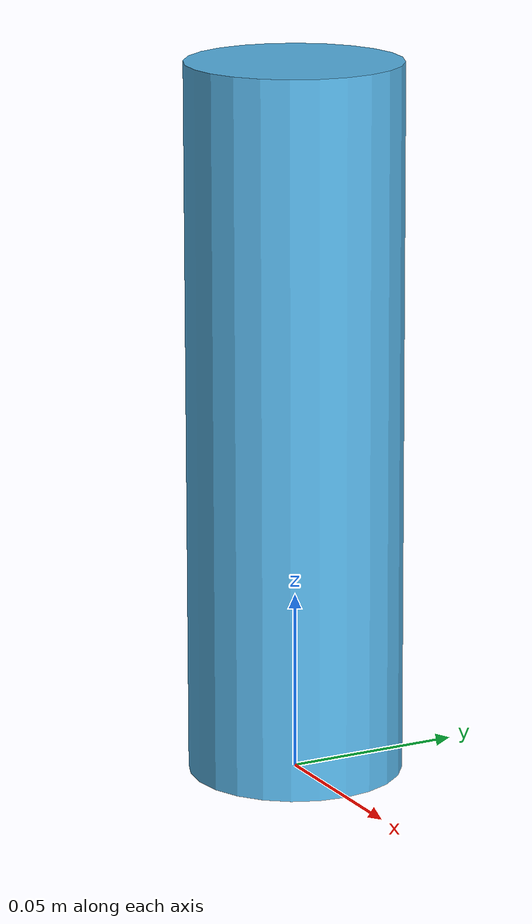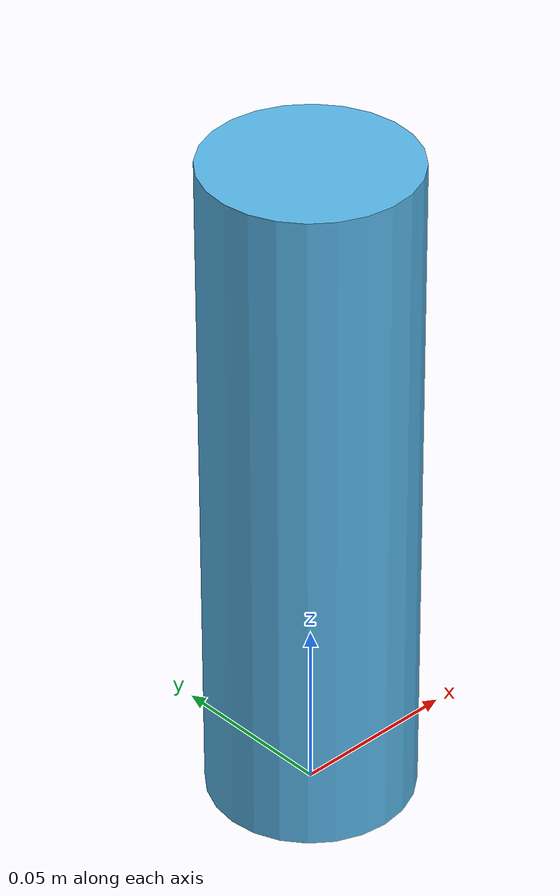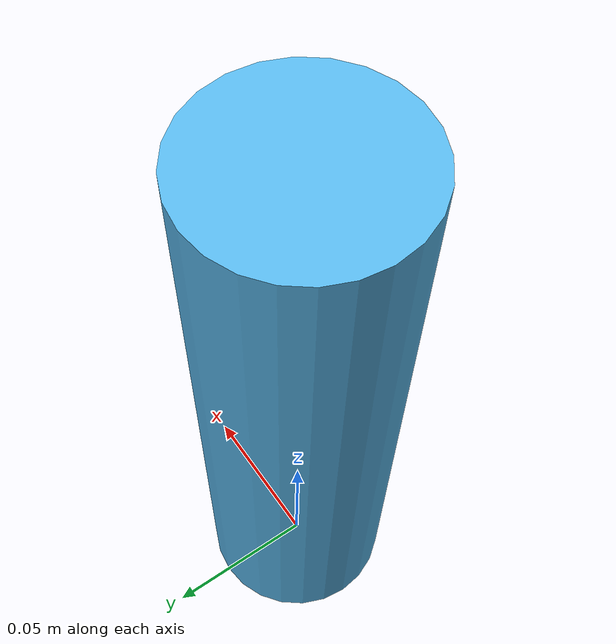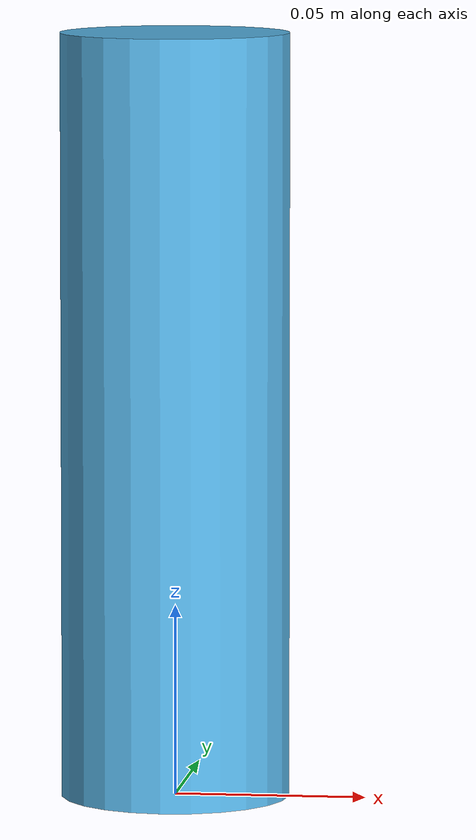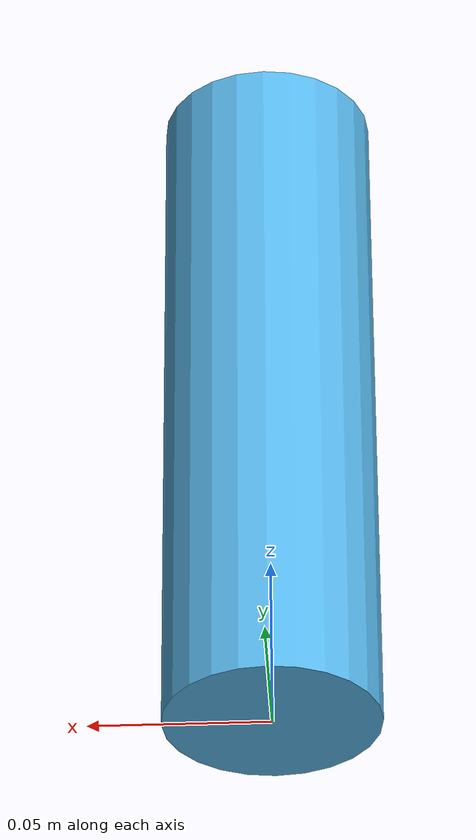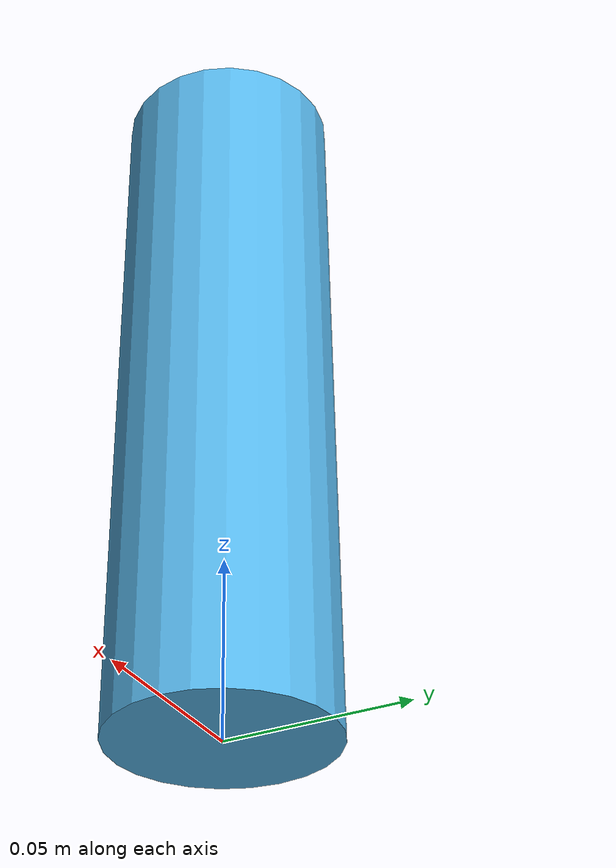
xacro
<?xml version="1.0"?>

<robot
  xmlns:xacro="http://www.ros.org/wiki/xacro"
  name="zeroerr_single_joint">

  <link name="base_link"/>

  <link name="link6">
    <visual>
      <geometry>
        <cylinder radius="0.03" length="0.20"/>
      </geometry>
      <origin xyz="0 0 0.10" rpy="0 0 0"/>
    </visual>
  </link>

  <joint name="joint6" type="revolute">
    <parent link="base_link"/>
    <child link="link6"/>

    <origin xyz="0 0 0" rpy="0 0 0"/>
    <axis xyz="0 0 1"/>

    <limit
      lower="-3.1415926"
      upper="3.1415926"
      effort="100.0"
      velocity="0.10"/>
  </joint>

  <ros2_control name="ZeroErrSystem" type="system">

    <hardware>
      <plugin>zeroerr_ethercat_hardware/ZeroErrSystem</plugin>

      <param name="master_index">0</param>
      <param name="slave_alias">0</param>
      <param name="slave_position">5</param>

      <param name="vendor_id">0x5a65726f</param>
      <param name="product_code">0x00029252</param>

      <param name="operation_mode">8</param>

      <param name="counts_per_revolution">524288</param>
      <param name="zero_offset_counts">262144</param>
      <param name="direction">1.0</param>
      <param name="gear_ratio">1.0</param>

      <!-- 最大指令速度：2 deg/s -->
      <param name="max_command_velocity">0.034906585</param>

      <!-- 最大允许目标跳变：5 deg -->
      <param name="max_command_jump">0.087266463</param>

      <!-- 连续100个有效通信周期后才允许运动 -->
      <param name="required_valid_cycles">100</param>
    </hardware>

    <joint name="joint6">

      <command_interface name="position">
        <param name="min">-3.1415926</param>
        <param name="max">3.1415926</param>
      </command_interface>

      <state_interface name="position"/>
      <state_interface name="velocity"/>

    </joint>

  </ros2_control>

</robot>
